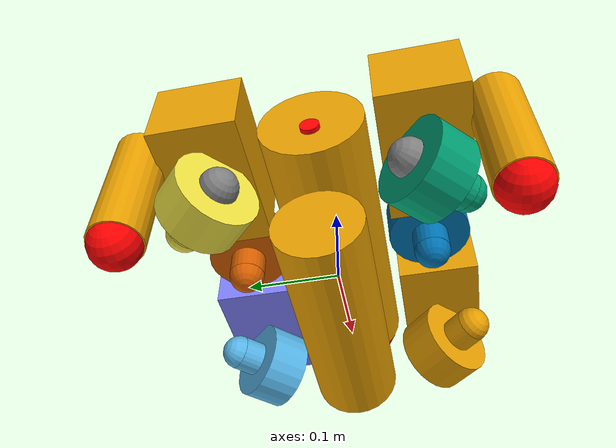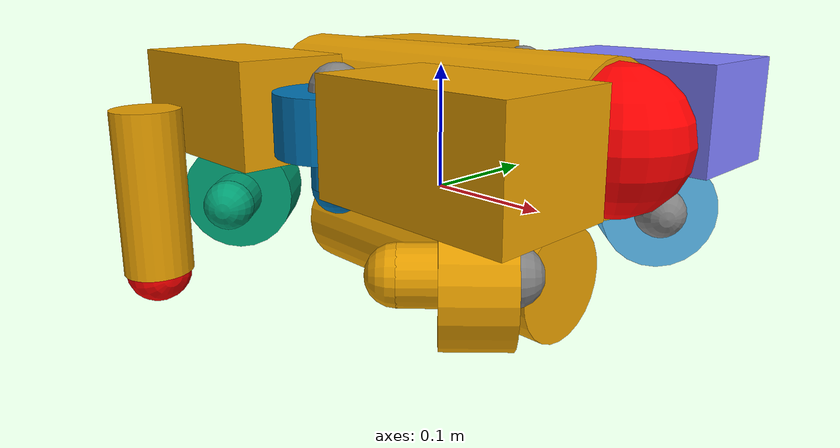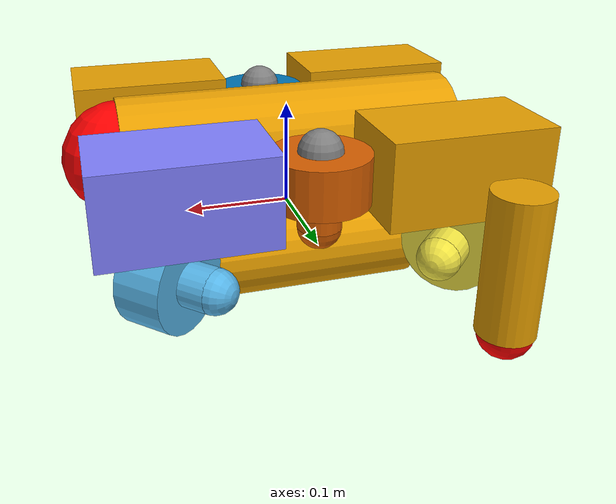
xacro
<?xml version="1.0"?>

<robot name="orca" xmlns:xacro="http://ros.org/wiki/xacro">

    <!-- Orca constants -->
    <xacro:property name="TOTAL_MASS" value="9.75"/>  <!-- 9.75 floats in freshwater, 10.0 for seawater -->
    <xacro:property name="TOTAL_VOLUME" value="0.01"/>
    <xacro:property name="LENGTH" value="0.457"/>
    <xacro:property name="WIDTH" value="0.338"/>
    <xacro:property name="HEIGHT" value="0.254"/>
    <xacro:property name="IXX" value="${TOTAL_MASS / 12 * (WIDTH * WIDTH + HEIGHT * HEIGHT)}"/>
    <xacro:property name="IYY" value="${TOTAL_MASS / 12 * (LENGTH * LENGTH + HEIGHT * HEIGHT)}"/>
    <xacro:property name="IZZ" value="${TOTAL_MASS / 12 * (LENGTH * LENGTH + WIDTH * WIDTH)}"/>
    <xacro:property name="FLOAT_X" value="0.12"/>
    <xacro:property name="FLOAT_Y" value="0.11"/>
    <xacro:property name="FLOAT_Z" value="0.07"/>
    <xacro:property name="THRUSTER_X" value="0.15"/>
    <xacro:property name="THRUSTER_Y" value="0.09"/>
    <xacro:property name="THRUSTER_Z" value="-0.009"/>
    <xacro:property name="VERT_THRUSTER_Y" value="0.105"/>
    <xacro:property name="VERT_THRUSTER_Z" value="0.09"/>
    <xacro:property name="MASS_Z" value="0.011"/>
    <xacro:property name="FORWARD_FORCE" value="50"/>
    <xacro:property name="REVERSE_FORCE" value="40"/>
    <xacro:property name="HAS_TETHER" default="false"/>
    <xacro:property name="SURFACE" default="0"/>

    <!-- Physics properties -->
    <xacro:property name="FLUID_DENSITY" value="997"/>
    <xacro:property name="DISPLACED_MASS" value="${TOTAL_VOLUME*FLUID_DENSITY}"/>

    <!-- General constants -->
    <xacro:property name="PI" value="3.1415926535897931"/>

    <!-- Materials -->
    <material name="gray">
        <color rgba="0.5 0.5 0.5 1.0"/>
    </material>
    <material name="blue">
        <color rgba="0.5 0.5 1.0 1.0"/>
    </material>
    <material name="red">
        <color rgba="1.0 0.0 0.0 1.0"/>
    </material>

    <!-- Thruster origins -->
    <xacro:property name="front_right_origin">
        <origin xyz="${THRUSTER_X} ${-THRUSTER_Y} ${THRUSTER_Z}" rpy="0 ${PI/2} ${PI/4}"/>
    </xacro:property>
    <xacro:property name="front_left_origin">
        <origin xyz="${THRUSTER_X} ${THRUSTER_Y} ${THRUSTER_Z}" rpy="0 ${PI/2} ${-PI/4}"/>
    </xacro:property>
    <xacro:property name="rear_right_origin">
        <origin xyz="${-THRUSTER_X} ${-THRUSTER_Y} ${THRUSTER_Z}" rpy="0 ${PI/2} ${PI*3/4}"/>
    </xacro:property>
    <xacro:property name="rear_left_origin">
        <origin xyz="${-THRUSTER_X} ${THRUSTER_Y} ${THRUSTER_Z}" rpy="0 ${PI/2} ${-PI*3/4}"/>
    </xacro:property>
    <xacro:property name="vertical_right_origin">
        <origin xyz="0 ${-VERT_THRUSTER_Y} ${VERT_THRUSTER_Z}" rpy="0 0 0"/>
    </xacro:property>
    <xacro:property name="vertical_left_origin">
        <origin xyz="0 ${VERT_THRUSTER_Y} ${VERT_THRUSTER_Z}" rpy="0 0 0"/>
    </xacro:property>

    <!-- Thruster macro -->
    <xacro:macro name="t200" params="name *origin">
        <link name="t200_link_${name}">
            <!-- Front cone -->
            <visual>
                <origin xyz="0 0 0"/>
                <geometry>
                    <sphere radius="0.02"/>
                </geometry>
                <material name="gray"/> <!-- All visual elements in this link pick up this material -->
            </visual>
            <!-- Rear cone -->
            <visual>
                <origin xyz="0 0 -0.07"/>
                <geometry>
                    <sphere radius="0.02"/>
                </geometry>
            </visual>
            <!-- Thruster body -->
            <visual>
                <origin xyz="0 0 -0.035"/>
                <geometry>
                    <cylinder length="0.07" radius="0.02"/>
                </geometry>
            </visual>
            <!-- Propeller guard -->
            <visual>
                <origin xyz="0 0 -0.0225"/>
                <geometry>
                    <cylinder length="0.045" radius="0.045"/>
                </geometry>
            </visual>
        </link>
        <joint name="t200_joint_${name}" type="fixed">
            <xacro:insert_block name="origin"/>
            <parent link="base_link"/>
            <child link="t200_link_${name}"/>
        </joint>
    </xacro:macro>

    <!-- Base link -->
    <link name="base_link">
        <!-- Inertial -->
        <inertial>
            <origin xyz="0 0 ${MASS_Z}"/> <!-- Center of mass -->
            <mass value="${TOTAL_MASS}"/>
            <inertia ixx="${IXX}" ixy="0.0" ixz="0.0" iyy="${IYY}" iyz="0.0" izz="${IZZ}"/>
        </inertial>
        <!-- Float -->
        <visual>
            <origin xyz="${FLOAT_X} ${FLOAT_Y} ${FLOAT_Z}"/>
            <geometry>
                <box size="0.15 0.09 0.08"/>
            </geometry>
            <material name="blue"/>
        </visual>
        <!-- Float -->
        <visual>
            <origin xyz="${FLOAT_X} ${-FLOAT_Y} ${FLOAT_Z}"/>
            <geometry>
                <box size="0.15 0.09 0.08"/>
            </geometry>
        </visual>
        <!-- Float -->
        <visual>
            <origin xyz="${-FLOAT_X} ${FLOAT_Y} ${FLOAT_Z}"/>
            <geometry>
                <box size="0.15 0.09 0.08"/>
            </geometry>
        </visual>
        <!-- Float -->
        <visual>
            <origin xyz="${-FLOAT_X} ${-FLOAT_Y} ${FLOAT_Z}"/>
            <geometry>
                <box size="0.15 0.09 0.08"/>
            </geometry>
        </visual>
        <!-- Electronics tube -->
        <visual>
            <origin xyz="0 0 0.063" rpy="0 ${PI/2} 0"/>
            <geometry>
                <cylinder length="0.32" radius="0.055"/>
            </geometry>
        </visual>
        <!-- Battery tube -->
        <visual>
            <origin xyz="0 0 -0.05" rpy="0 ${PI/2} 0"/>
            <geometry>
                <cylinder length="0.25" radius="0.045"/>
            </geometry>
        </visual>
        <!-- Left down-facing camera tube -->
        <visual>
            <origin xyz="-0.15 0.18 0" rpy="0 0 0"/>
            <geometry>
                <cylinder length="0.135" radius="0.0275"/>
            </geometry>
        </visual>
        <!-- Right down-facing camera tube -->
        <visual>
            <origin xyz="-0.15 -0.18 0" rpy="0 0 0"/>
            <geometry>
                <cylinder length="0.135" radius="0.0275"/>
            </geometry>
        </visual>
        <!-- Collision region -->
        <collision>
            <geometry>
                <box size="${LENGTH} ${WIDTH} ${HEIGHT}"/>
            </geometry>
        </collision>
    </link>

    <!-- Barometer link TODO /tf too low -->
    <link name="baro_link">
        <visual>
            <origin xyz="0 0 0.05" rpy="0 ${PI/2} 0"/>
            <geometry>
                <cylinder length="0.01" radius="0.01"/>
            </geometry>
            <material name="red"/>
        </visual>
    </link>

    <!-- Attach baro_link to base_link -->
    <joint name="baro_joint" type="fixed">
        <origin xyz="-0.16 0 0" rpy="0 0 0"/>
        <parent link="base_link"/>
        <child link="baro_link"/>
    </joint>

    <!-- Forward camera link -->
    <link name="forward_camera_link">
        <visual>
            <origin xyz="0 0 0" rpy="0 0 0"/>
            <geometry>
                <sphere radius="0.052"/>
            </geometry>
            <material name="red"/>
        </visual>
    </link>

    <!-- Attach forward_camera_link to base_link -->
    <joint name="forward_camera_joint" type="fixed">
        <origin xyz="0.16 0 0.063" rpy="0 0 0"/>
        <parent link="base_link"/>
        <child link="forward_camera_link"/>
    </joint>

    <!-- Forward camera frame -->
    <link name="forward_camera_frame"/>

    <!-- Attach forward_camera_frame to base_link (parsed by filter_node) -->
    <joint name="forward_camera_frame_joint" type="fixed">
        <origin xyz="0.16 0 0.063" rpy="${-PI/2} 0 ${-PI/2}"/>
        <parent link="base_link"/>
        <child link="forward_camera_frame"/>
    </joint>

    <!-- Left camera link -->
    <link name="left_camera_link">
        <visual>
            <origin xyz="0 0 0" rpy="0 0 0"/>
            <geometry>
                <sphere radius="0.026"/>
            </geometry>
            <material name="red"/>
        </visual>
    </link>

    <!-- Attach left_camera_link to base_link -->
    <joint name="left_camera_joint" type="fixed">
        <axis xyz="0 1 0"/>
        <origin xyz="-0.15 0.18 -0.0675" rpy="0 ${PI/2} 0"/>
        <parent link="base_link"/>
        <child link="left_camera_link"/>
    </joint>

    <!-- Left camera frame -->
    <link name="left_camera_frame"/>

    <!-- Attach left_camera_frame to base_link (parsed by filter_node)  -->
    <joint name="left_camera_frame_joint" type="fixed">
        <origin xyz="-0.15 0.18 -0.0675" rpy="${PI} 0 ${-PI/2}"/>
        <parent link="base_link"/>
        <child link="left_camera_frame"/>
    </joint>

    <!-- Right camera link -->
    <link name="right_camera_link">
        <!-- Camera hemisphere -->
        <visual>
            <origin xyz="0 0 0" rpy="0 0 0"/>
            <geometry>
                <sphere radius="0.026"/>
            </geometry>
            <material name="red"/>
        </visual>
    </link>

    <!-- Attach right_camera_link to base_link -->
    <joint name="right_camera_joint" type="fixed">
        <axis xyz="0 1 0"/>
        <origin xyz="-0.15 -0.18 -0.0675" rpy="0 1.57079 0"/>
        <parent link="base_link"/>
        <child link="right_camera_link"/>
    </joint>

    <!-- Right camera frame -->
    <link name="right_camera_frame"/>

    <!-- Attach right_camera_frame to base_link -->
    <joint name="right_camera_frame_joint" type="fixed">
        <origin xyz="-0.15 -0.18 -0.0675" rpy="${PI} 0 ${-PI/2}"/>
        <parent link="base_link"/>
        <child link="right_camera_frame"/>
    </joint>

    <!-- Attach thrusters to the base_link -->
    <xacro:t200 name="front_right">
        <xacro:insert_block name="front_right_origin"/>
    </xacro:t200>
    <xacro:t200 name="front_left">
        <xacro:insert_block name="front_left_origin"/>
    </xacro:t200>
    <xacro:t200 name="rear_right">
        <xacro:insert_block name="rear_right_origin"/>
    </xacro:t200>
    <xacro:t200 name="rear_left">
        <xacro:insert_block name="rear_left_origin"/>
    </xacro:t200>
    <xacro:t200 name="vertical_right">
        <xacro:insert_block name="vertical_right_origin"/>
    </xacro:t200>
    <xacro:t200 name="vertical_left">
        <xacro:insert_block name="vertical_left_origin"/>
    </xacro:t200>

    <!--
      The OrcaBuoyancyPlugin applies a force that counteracts gravity.
      Buoyancy force is not applied if the link is above the surface of the water.
    -->
    <gazebo>
        <plugin name="OrcaBuoyancyPlugin" filename="libOrcaBuoyancyPlugin.so">
            <fluid_density>${FLUID_DENSITY}</fluid_density>
            <link name="base_link">
                <center_of_volume>0 0 0.06</center_of_volume>
                <volume>${TOTAL_VOLUME}</volume>
            </link>
        </plugin>
    </gazebo>

    <!--
    The OrcaDragPlugin applies a drag force proportional to velocity^2.
    -->
    <gazebo>
        <plugin name="OrcaDragPlugin" filename="libOrcaDragPlugin.so">
            <link name="base_link">
                <center_of_mass>0 0 ${MASS_Z}</center_of_mass>
                <tether_attach>-0.25 0 ${THRUSTER_Z}</tether_attach>
                <xacro:unless value="${HAS_TETHER}">
                    <tether_drag>0</tether_drag>
                </xacro:unless>
            </link>
        </plugin>
    </gazebo>

    <gazebo>
        <plugin name="OrcaThrusterPlugin" filename="libOrcaThrusterPlugin.so">
            <link_name>orca::base_link</link_name>
            <thruster
                    name="front_right"> <!-- name attributes are ignored; the tag order must match the message array order -->
                <pos_force>${FORWARD_FORCE}</pos_force> <!-- units are N, positive for ccw, negative for cw -->
                <neg_force>${REVERSE_FORCE}</neg_force> <!-- units are N, positive for ccw, negative for cw -->
                <xacro:insert_block name="front_right_origin"/>
            </thruster>
            <thruster name="front_left">
                <pos_force>${FORWARD_FORCE}</pos_force>
                <neg_force>${REVERSE_FORCE}</neg_force>
                <xacro:insert_block name="front_left_origin"/>
            </thruster>
            <thruster name="rear_right">
                <pos_force>${-REVERSE_FORCE}</pos_force>
                <neg_force>${-FORWARD_FORCE}</neg_force>
                <xacro:insert_block name="rear_right_origin"/>
            </thruster>
            <thruster name="rear_left">
                <pos_force>${-REVERSE_FORCE}</pos_force>
                <neg_force>${-FORWARD_FORCE}</neg_force>
                <xacro:insert_block name="rear_left_origin"/>
            </thruster>
            <thruster name="vertical_right">
                <pos_force>${FORWARD_FORCE}</pos_force>
                <neg_force>${REVERSE_FORCE}</neg_force>
                <xacro:insert_block name="vertical_right_origin"/>
            </thruster>
            <thruster name="vertical_left">
                <pos_force>${-REVERSE_FORCE}</pos_force>
                <neg_force>${-FORWARD_FORCE}</neg_force>
                <xacro:insert_block name="vertical_left_origin"/>
            </thruster>
        </plugin>
    </gazebo>

    <!--
      The OrcaBarometerPlugin (wraps a Gazebo altimeter sensor) simulates a barometer sensor such as the BlueRobotics Bar30.
    -->
    <gazebo reference="baro_link">
        <sensor name="barometer_sensor" type="altimeter">
            <update_rate>10</update_rate> <!-- Match orca_driver rate -->
            <plugin name="OrcaBarometerPlugin" filename="libOrcaBarometerPlugin.so">
                <fluid_density>${FLUID_DENSITY}</fluid_density>
            </plugin>
        </sensor>
    </gazebo>

    <!--
      The OrcaIMUPlugin (wraps a Gazebo IMU sensor) simulates an IMU sensor such as the Phidgets 1044.
    -->
    <gazebo reference="base_link">
        <gravity>true</gravity>
        <sensor name="imu_sensor" type="imu">
            <update_rate>50</update_rate> <!-- Gazebeo max seems to be 50Hz -->
            <plugin name="OrcaIMUPlugin" filename="libOrcaIMUPlugin.so"/>
            <pose>0 0 0 0 0 0</pose>
        </sensor>
    </gazebo>

    <!--
    The camera_controller plugin (wraps a Gazebo camera sensor) simulates a camera driver.
    This xacro macro attaches a camera to ${prefix}_camera_link:
  -->
    <xacro:macro name="camera_plugin" params="prefix">
        <gazebo reference="${prefix}_camera_link">
            <sensor type="camera" name="${prefix}_camera">
                <update_rate>30.0</update_rate>
                <camera name="head">
                    <horizontal_fov>1.4</horizontal_fov>
                    <image>
                        <width>800</width>
                        <height>600</height>
                        <format>R8G8B8</format>
                    </image>
                    <clip>
                        <near>0.02</near>
                        <far>300</far>
                    </clip>
                    <noise>
                        <type>gaussian</type>
                        <mean>0.0</mean>
                        <stddev>0.007</stddev>
                    </noise>
                </camera>
                <plugin name="${prefix}_camera_controller" filename="libgazebo_ros_camera.so">
                    <alwaysOn>true</alwaysOn>
                    <updateRate>0.0</updateRate>
                    <cameraName>orca/${prefix}_camera</cameraName>
                    <imageTopicName>image_raw</imageTopicName>
                    <cameraInfoTopicName>camera_info</cameraInfoTopicName>
                    <frameName>${prefix}_camera_link</frameName>
                    <hackBaseline>0.07</hackBaseline>
                    <distortionK1>0.0</distortionK1>
                    <distortionK2>0.0</distortionK2>
                    <distortionK3>0.0</distortionK3>
                    <distortionT1>0.0</distortionT1>
                    <distortionT2>0.0</distortionT2>
                </plugin>
            </sensor>
        </gazebo>
    </xacro:macro>

    <!-- Forward-facing camera: -->

    <!-- Left down-facing camera: -->
    <xacro:camera_plugin prefix="left"/>

    <!-- Right down-facing camera: -->

    <gazebo>
        <plugin name="p3d_test" filename="libgazebo_ros_p3d.so">
            <ros>
                <argument>odom:=ground_truth</argument>
            </ros>
            <update_rate>30.0</update_rate>
            <body_name>base_link</body_name>
            <frame_name>map</frame_name>
            <xyz_offsets>0 0 0</xyz_offsets>
            <rpy_offsets>0 0 0</rpy_offsets>
        </plugin>
    </gazebo>

</robot>
